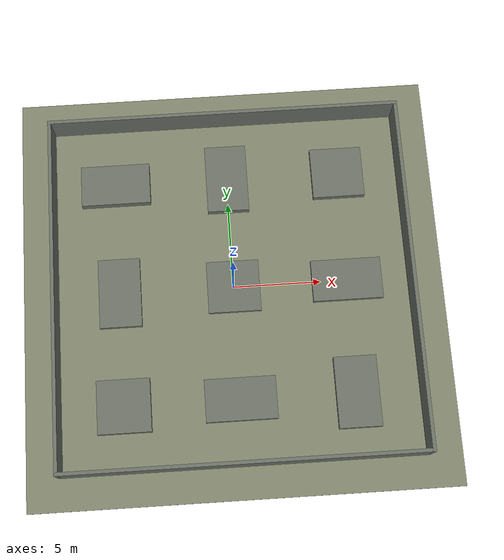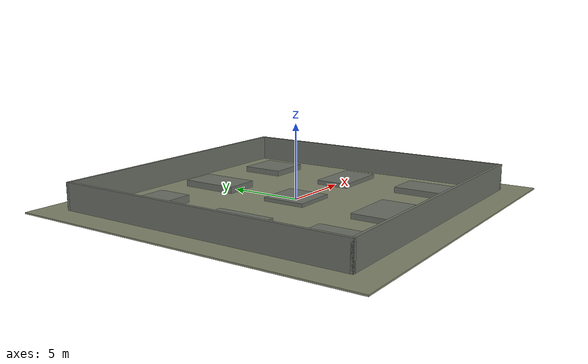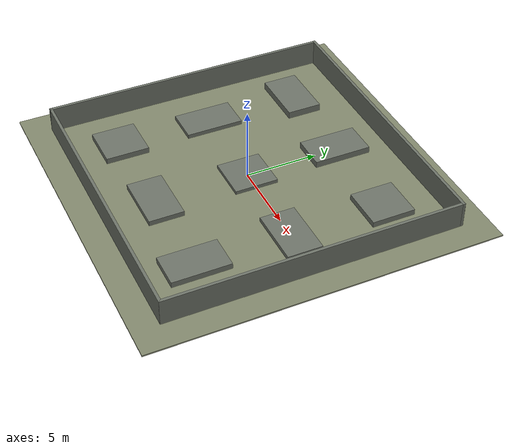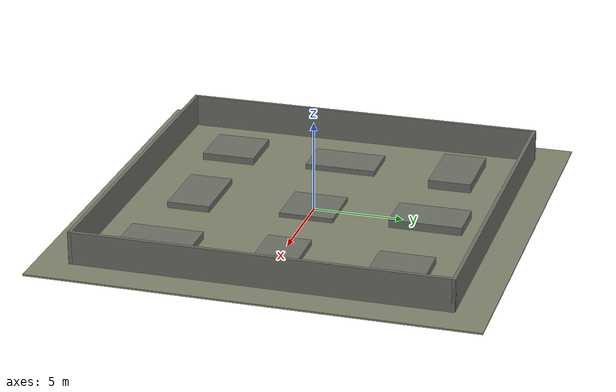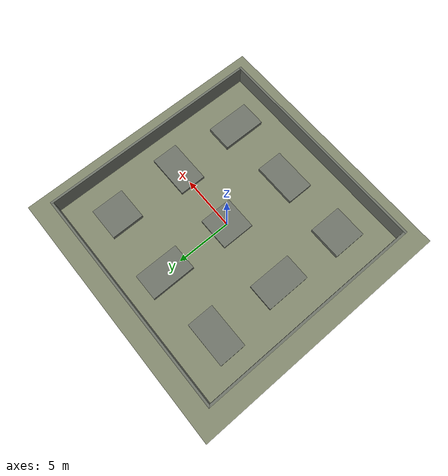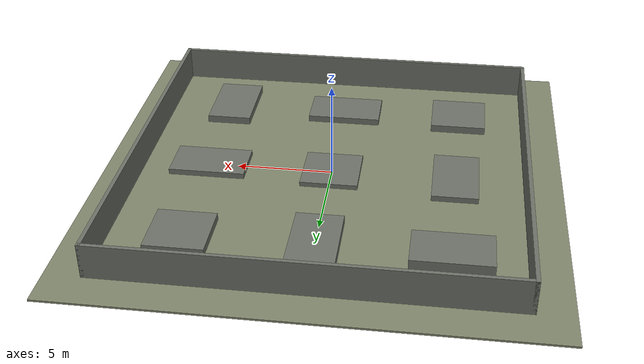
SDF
<?xml version="1.0" ?>
<sdf version="1.7">
  <world name="terrain_rough">
    <physics type="ode">
      <max_step_size>0.01</max_step_size>
    </physics>

    <light name="sun" type="directional">
      <cast_shadows>true</cast_shadows>
      <pose>0 0 10 0 0 0</pose>
      <diffuse>0.8 0.8 0.8 1</diffuse>
      <specular>0.3 0.3 0.3 1</specular>
      <attenuation>
        <range>1000</range>
        <constant>0.9</constant>
        <linear>0.01</linear>
        <quadratic>0.001</quadratic>
      </attenuation>
      <direction>-0.5 0.3 -1.0</direction>
    </light>

    <model name="ground_plane">
      <static>true</static>
      <pose>0 0 -0.05 0 0 0</pose>
      <link name="link">
        <collision name="collision">
          <geometry>
            <box><size>24.0 24.0 0.1</size></box>
          </geometry>
          <surface>
            <friction>
              <ode><mu>100</mu><mu2>50</mu2></ode>
            </friction>
          </surface>
        </collision>
        <visual name="visual">
          <geometry>
            <box><size>24.0 24.0 0.1</size></box>
          </geometry>
          <material>
            <ambient>0.5 0.52 0.42 1</ambient>
            <diffuse>0.5 0.52 0.42 1</diffuse>
          </material>
        </visual>
      </link>
    </model>

    <model name="platform_00">
      <static>true</static>
      <pose>0.000 -10.100 0.900 0 0 0</pose>
      <link name="link">
        <collision name="collision">
          <geometry>
            <box><size>20.400 0.200 1.800</size></box>
          </geometry>
          <surface>
            <friction>
              <ode><mu>1.0</mu><mu2>1.0</mu2></ode>
            </friction>
          </surface>
        </collision>
        <visual name="visual">
          <geometry>
            <box><size>20.400 0.200 1.800</size></box>
          </geometry>
          <material>
            <ambient>0.42 0.44 0.40 1</ambient>
            <diffuse>0.42 0.44 0.40 1</diffuse>
            <specular>0.1 0.1 0.1 1</specular>
          </material>
        </visual>
      </link>
    </model>

    <model name="platform_01">
      <static>true</static>
      <pose>0.000 10.100 0.900 0 0 0</pose>
      <link name="link">
        <collision name="collision">
          <geometry>
            <box><size>20.400 0.200 1.800</size></box>
          </geometry>
          <surface>
            <friction>
              <ode><mu>1.0</mu><mu2>1.0</mu2></ode>
            </friction>
          </surface>
        </collision>
        <visual name="visual">
          <geometry>
            <box><size>20.400 0.200 1.800</size></box>
          </geometry>
          <material>
            <ambient>0.42 0.44 0.40 1</ambient>
            <diffuse>0.42 0.44 0.40 1</diffuse>
            <specular>0.1 0.1 0.1 1</specular>
          </material>
        </visual>
      </link>
    </model>

    <model name="platform_02">
      <static>true</static>
      <pose>-10.100 0.000 0.900 0 0 0</pose>
      <link name="link">
        <collision name="collision">
          <geometry>
            <box><size>0.200 20.400 1.800</size></box>
          </geometry>
          <surface>
            <friction>
              <ode><mu>1.0</mu><mu2>1.0</mu2></ode>
            </friction>
          </surface>
        </collision>
        <visual name="visual">
          <geometry>
            <box><size>0.200 20.400 1.800</size></box>
          </geometry>
          <material>
            <ambient>0.42 0.44 0.40 1</ambient>
            <diffuse>0.42 0.44 0.40 1</diffuse>
            <specular>0.1 0.1 0.1 1</specular>
          </material>
        </visual>
      </link>
    </model>

    <model name="platform_03">
      <static>true</static>
      <pose>10.100 0.000 0.900 0 0 0</pose>
      <link name="link">
        <collision name="collision">
          <geometry>
            <box><size>0.200 20.400 1.800</size></box>
          </geometry>
          <surface>
            <friction>
              <ode><mu>1.0</mu><mu2>1.0</mu2></ode>
            </friction>
          </surface>
        </collision>
        <visual name="visual">
          <geometry>
            <box><size>0.200 20.400 1.800</size></box>
          </geometry>
          <material>
            <ambient>0.42 0.44 0.40 1</ambient>
            <diffuse>0.42 0.44 0.40 1</diffuse>
            <specular>0.1 0.1 0.1 1</specular>
          </material>
        </visual>
      </link>
    </model>

    <model name="platform_04">
      <static>true</static>
      <pose>-6.500 -6.500 0.200 0 0 0</pose>
      <link name="link">
        <collision name="collision">
          <geometry>
            <box><size>3.000 3.000 0.400</size></box>
          </geometry>
          <surface>
            <friction>
              <ode><mu>1.0</mu><mu2>1.0</mu2></ode>
            </friction>
          </surface>
        </collision>
        <visual name="visual">
          <geometry>
            <box><size>3.000 3.000 0.400</size></box>
          </geometry>
          <material>
            <ambient>0.42 0.44 0.40 1</ambient>
            <diffuse>0.42 0.44 0.40 1</diffuse>
            <specular>0.1 0.1 0.1 1</specular>
          </material>
        </visual>
      </link>
    </model>

    <model name="platform_05">
      <static>true</static>
      <pose>-6.500 0.000 0.150 0 0 0</pose>
      <link name="link">
        <collision name="collision">
          <geometry>
            <box><size>2.400 4.000 0.300</size></box>
          </geometry>
          <surface>
            <friction>
              <ode><mu>1.0</mu><mu2>1.0</mu2></ode>
            </friction>
          </surface>
        </collision>
        <visual name="visual">
          <geometry>
            <box><size>2.400 4.000 0.300</size></box>
          </geometry>
          <material>
            <ambient>0.42 0.44 0.40 1</ambient>
            <diffuse>0.42 0.44 0.40 1</diffuse>
            <specular>0.1 0.1 0.1 1</specular>
          </material>
        </visual>
      </link>
    </model>

    <model name="platform_06">
      <static>true</static>
      <pose>-6.500 6.500 0.250 0 0 0</pose>
      <link name="link">
        <collision name="collision">
          <geometry>
            <box><size>4.000 2.400 0.500</size></box>
          </geometry>
          <surface>
            <friction>
              <ode><mu>1.0</mu><mu2>1.0</mu2></ode>
            </friction>
          </surface>
        </collision>
        <visual name="visual">
          <geometry>
            <box><size>4.000 2.400 0.500</size></box>
          </geometry>
          <material>
            <ambient>0.42 0.44 0.40 1</ambient>
            <diffuse>0.42 0.44 0.40 1</diffuse>
            <specular>0.1 0.1 0.1 1</specular>
          </material>
        </visual>
      </link>
    </model>

    <model name="platform_07">
      <static>true</static>
      <pose>0.000 -6.500 0.175 0 0 0</pose>
      <link name="link">
        <collision name="collision">
          <geometry>
            <box><size>4.000 2.400 0.350</size></box>
          </geometry>
          <surface>
            <friction>
              <ode><mu>1.0</mu><mu2>1.0</mu2></ode>
            </friction>
          </surface>
        </collision>
        <visual name="visual">
          <geometry>
            <box><size>4.000 2.400 0.350</size></box>
          </geometry>
          <material>
            <ambient>0.42 0.44 0.40 1</ambient>
            <diffuse>0.42 0.44 0.40 1</diffuse>
            <specular>0.1 0.1 0.1 1</specular>
          </material>
        </visual>
      </link>
    </model>

    <model name="platform_08">
      <static>true</static>
      <pose>0.000 0.000 0.125 0 0 0</pose>
      <link name="link">
        <collision name="collision">
          <geometry>
            <box><size>3.000 3.000 0.250</size></box>
          </geometry>
          <surface>
            <friction>
              <ode><mu>1.0</mu><mu2>1.0</mu2></ode>
            </friction>
          </surface>
        </collision>
        <visual name="visual">
          <geometry>
            <box><size>3.000 3.000 0.250</size></box>
          </geometry>
          <material>
            <ambient>0.42 0.44 0.40 1</ambient>
            <diffuse>0.42 0.44 0.40 1</diffuse>
            <specular>0.1 0.1 0.1 1</specular>
          </material>
        </visual>
      </link>
    </model>

    <model name="platform_09">
      <static>true</static>
      <pose>0.000 6.500 0.225 0 0 0</pose>
      <link name="link">
        <collision name="collision">
          <geometry>
            <box><size>2.400 4.000 0.450</size></box>
          </geometry>
          <surface>
            <friction>
              <ode><mu>1.0</mu><mu2>1.0</mu2></ode>
            </friction>
          </surface>
        </collision>
        <visual name="visual">
          <geometry>
            <box><size>2.400 4.000 0.450</size></box>
          </geometry>
          <material>
            <ambient>0.42 0.44 0.40 1</ambient>
            <diffuse>0.42 0.44 0.40 1</diffuse>
            <specular>0.1 0.1 0.1 1</specular>
          </material>
        </visual>
      </link>
    </model>

    <model name="platform_10">
      <static>true</static>
      <pose>6.500 -6.500 0.200 0 0 0</pose>
      <link name="link">
        <collision name="collision">
          <geometry>
            <box><size>2.400 4.000 0.400</size></box>
          </geometry>
          <surface>
            <friction>
              <ode><mu>1.0</mu><mu2>1.0</mu2></ode>
            </friction>
          </surface>
        </collision>
        <visual name="visual">
          <geometry>
            <box><size>2.400 4.000 0.400</size></box>
          </geometry>
          <material>
            <ambient>0.42 0.44 0.40 1</ambient>
            <diffuse>0.42 0.44 0.40 1</diffuse>
            <specular>0.1 0.1 0.1 1</specular>
          </material>
        </visual>
      </link>
    </model>

    <model name="platform_11">
      <static>true</static>
      <pose>6.500 0.000 0.150 0 0 0</pose>
      <link name="link">
        <collision name="collision">
          <geometry>
            <box><size>4.000 2.400 0.300</size></box>
          </geometry>
          <surface>
            <friction>
              <ode><mu>1.0</mu><mu2>1.0</mu2></ode>
            </friction>
          </surface>
        </collision>
        <visual name="visual">
          <geometry>
            <box><size>4.000 2.400 0.300</size></box>
          </geometry>
          <material>
            <ambient>0.42 0.44 0.40 1</ambient>
            <diffuse>0.42 0.44 0.40 1</diffuse>
            <specular>0.1 0.1 0.1 1</specular>
          </material>
        </visual>
      </link>
    </model>

    <model name="platform_12">
      <static>true</static>
      <pose>6.500 6.500 0.200 0 0 0</pose>
      <link name="link">
        <collision name="collision">
          <geometry>
            <box><size>3.000 3.000 0.400</size></box>
          </geometry>
          <surface>
            <friction>
              <ode><mu>1.0</mu><mu2>1.0</mu2></ode>
            </friction>
          </surface>
        </collision>
        <visual name="visual">
          <geometry>
            <box><size>3.000 3.000 0.400</size></box>
          </geometry>
          <material>
            <ambient>0.42 0.44 0.40 1</ambient>
            <diffuse>0.42 0.44 0.40 1</diffuse>
            <specular>0.1 0.1 0.1 1</specular>
          </material>
        </visual>
      </link>
    </model>

  </world>
</sdf>
